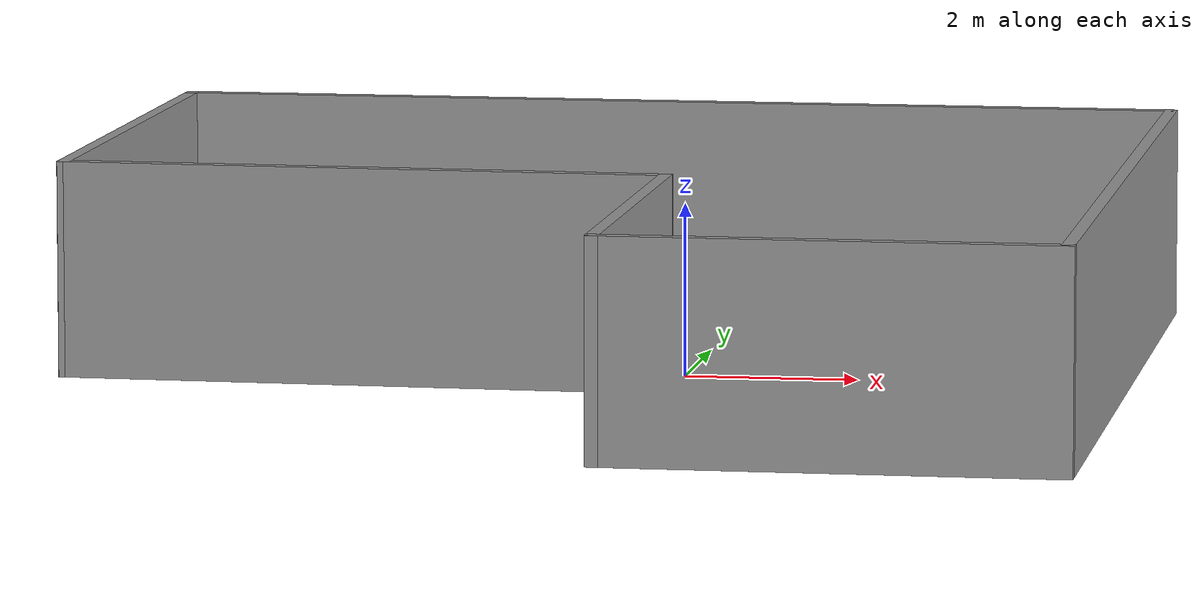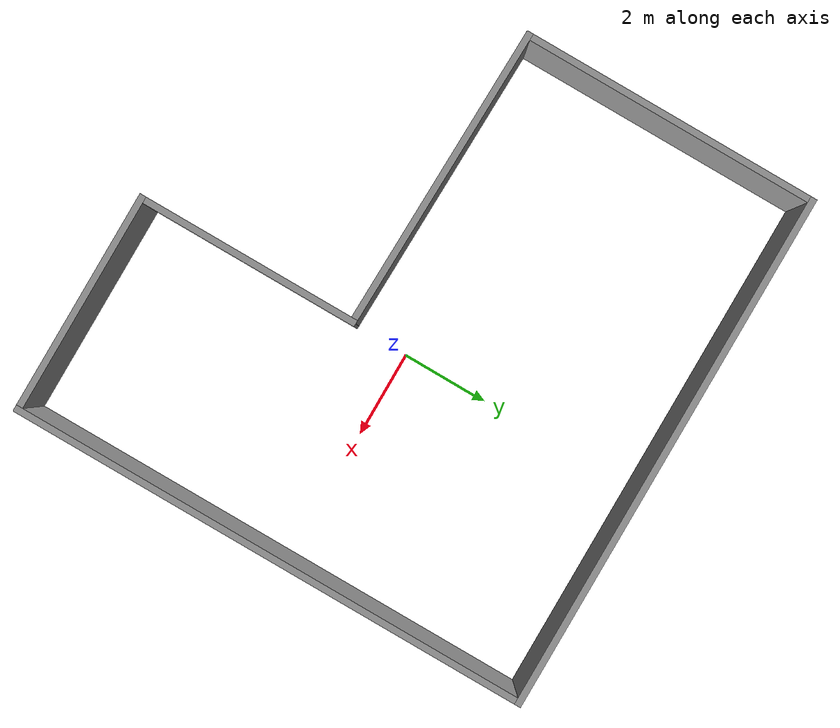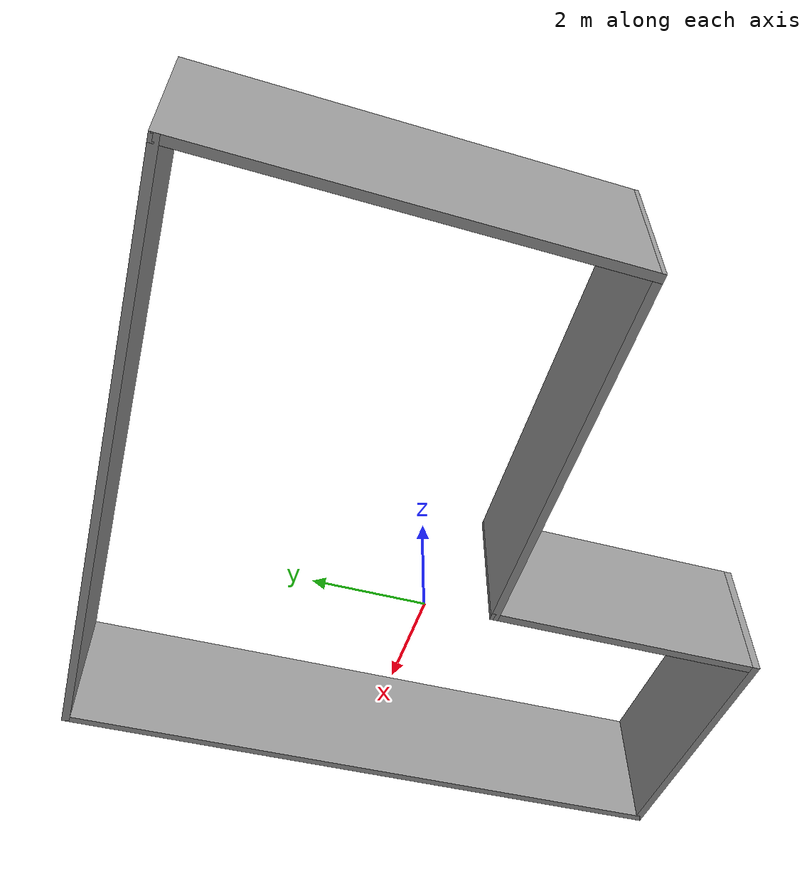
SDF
<?xml version='1.0'?>
<sdf version='1.6'>
  <model name='Untitled'>
    <pose frame=''>-0.983671 -0.347504 0 0 -0 0</pose>
    <link name='Wall_1'>
      <collision name='Wall_1_Collision'>
        <geometry>
          <box>
            <size>12.25 0.15 2.5</size>
          </box>
        </geometry>
        <pose frame=''>0 0 1.25 0 -0 0</pose>
      </collision>
      <visual name='Wall_1_Visual'>
        <pose frame=''>0 0 1.25 0 -0 0</pose>
        <geometry>
          <box>
            <size>12.25 0.15 2.5</size>
          </box>
        </geometry>
        <material>
          <script>
            <uri>file://media/materials/scripts/gazebo.material</uri>
            <name>Gazebo/Grey</name>
          </script>
          <ambient>1 1 1 1</ambient>
        </material>
        <meta>
          <layer>0</layer>
        </meta>
      </visual>
      <pose frame=''>0.000795 6.05 0 0 -0 0</pose>
    </link>
    <link name='Wall_2'>
      <collision name='Wall_2_Collision'>
        <geometry>
          <box>
            <size>12.25 0.15 2.5</size>
          </box>
        </geometry>
        <pose frame=''>0 0 1.25 0 -0 0</pose>
      </collision>
      <visual name='Wall_2_Visual'>
        <pose frame=''>0 0 1.25 0 -0 0</pose>
        <geometry>
          <box>
            <size>12.25 0.15 2.5</size>
          </box>
        </geometry>
        <material>
          <script>
            <uri>file://media/materials/scripts/gazebo.material</uri>
            <name>Gazebo/Grey</name>
          </script>
          <ambient>1 1 1 1</ambient>
        </material>
        <meta>
          <layer>0</layer>
        </meta>
      </visual>
      <pose frame=''>6.05079 0 0 0 0 -1.5708</pose>
    </link>
    <link name='Wall_3'>
      <collision name='Wall_3_Collision'>
        <geometry>
          <box>
            <size>5.25 0.15 2.5</size>
          </box>
        </geometry>
        <pose frame=''>0 0 1.25 0 -0 0</pose>
      </collision>
      <visual name='Wall_3_Visual'>
        <pose frame=''>0 0 1.25 0 -0 0</pose>
        <geometry>
          <box>
            <size>5.25 0.15 2.5</size>
          </box>
        </geometry>
        <material>
          <script>
            <uri>file://media/materials/scripts/gazebo.material</uri>
            <name>Gazebo/Grey</name>
          </script>
          <ambient>1 1 1 1</ambient>
        </material>
        <meta>
          <layer>0</layer>
        </meta>
      </visual>
      <pose frame=''>3.5008 -6.05 0 0 -0 3.14159</pose>
    </link>
    <link name='Wall_4'>
      <collision name='Wall_4_Collision'>
        <geometry>
          <box>
            <size>5.25 0.15 2.5</size>
          </box>
        </geometry>
        <pose frame=''>0 0 1.25 0 -0 0</pose>
      </collision>
      <visual name='Wall_4_Visual'>
        <pose frame=''>0 0 1.25 0 -0 0</pose>
        <geometry>
          <box>
            <size>5.25 0.15 2.5</size>
          </box>
        </geometry>
        <material>
          <script>
            <uri>file://media/materials/scripts/gazebo.material</uri>
            <name>Gazebo/Grey</name>
          </script>
          <ambient>1 1 1 1</ambient>
        </material>
        <meta>
          <layer>0</layer>
        </meta>
      </visual>
      <pose frame=''>0.950795 -3.5 0 0 -0 1.5708</pose>
    </link>
    <link name='Wall_5'>
      <collision name='Wall_5_Collision'>
        <geometry>
          <box>
            <size>7.15161 0.15 2.5</size>
          </box>
        </geometry>
        <pose frame=''>0 0 1.25 0 -0 0</pose>
      </collision>
      <visual name='Wall_5_Visual'>
        <pose frame=''>0 0 1.25 0 -0 0</pose>
        <geometry>
          <box>
            <size>7.15161 0.15 2.5</size>
          </box>
        </geometry>
        <material>
          <script>
            <uri>file://media/materials/scripts/gazebo.material</uri>
            <name>Gazebo/Grey</name>
          </script>
          <ambient>1 1 1 1</ambient>
        </material>
        <meta>
          <layer>0</layer>
        </meta>
      </visual>
      <pose frame=''>-2.54921 -0.875 0 0 -0 3.12017</pose>
    </link>
    <link name='Wall_6'>
      <collision name='Wall_6_Collision'>
        <geometry>
          <box>
            <size>7 0.15 2.5</size>
          </box>
        </geometry>
        <pose frame=''>0 0 1.25 0 -0 0</pose>
      </collision>
      <visual name='Wall_6_Visual'>
        <pose frame=''>0 0 1.25 0 -0 0</pose>
        <geometry>
          <box>
            <size>7 0.15 2.5</size>
          </box>
        </geometry>
        <material>
          <script>
            <uri>file://media/materials/scripts/gazebo.material</uri>
            <name>Gazebo/Grey</name>
          </script>
          <ambient>1 1 1 1</ambient>
        </material>
        <meta>
          <layer>0</layer>
        </meta>
      </visual>
      <pose frame=''>-6.0492 2.625 0 0 -0 1.5708</pose>
    </link>
    <static>1</static>
  </model>
</sdf>
